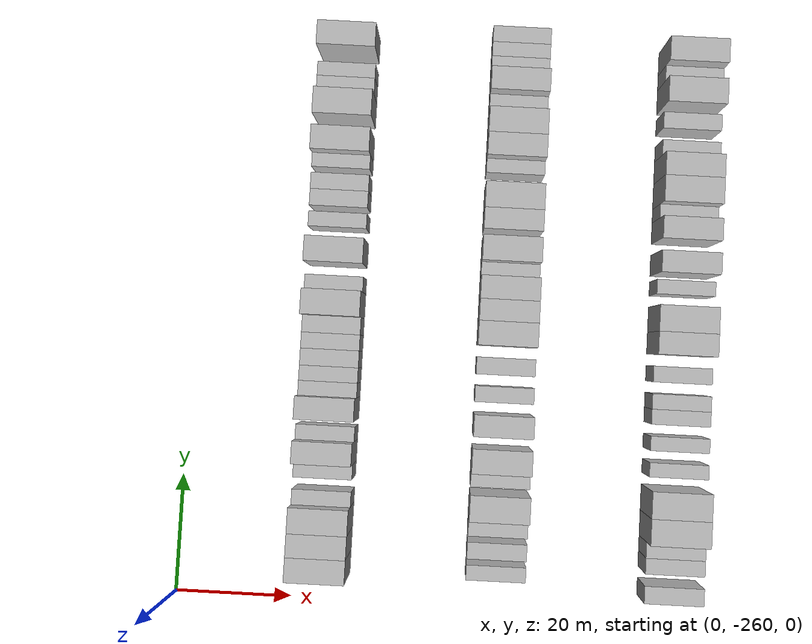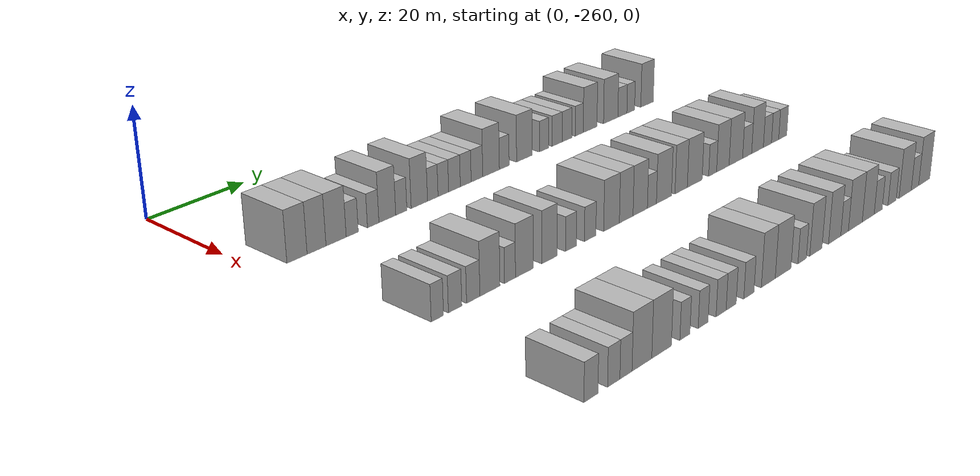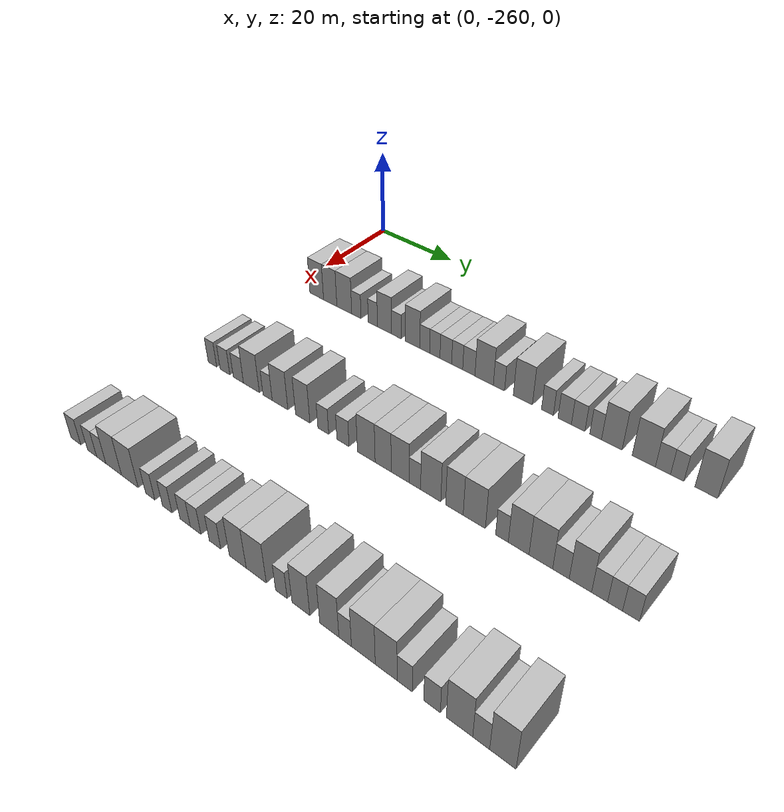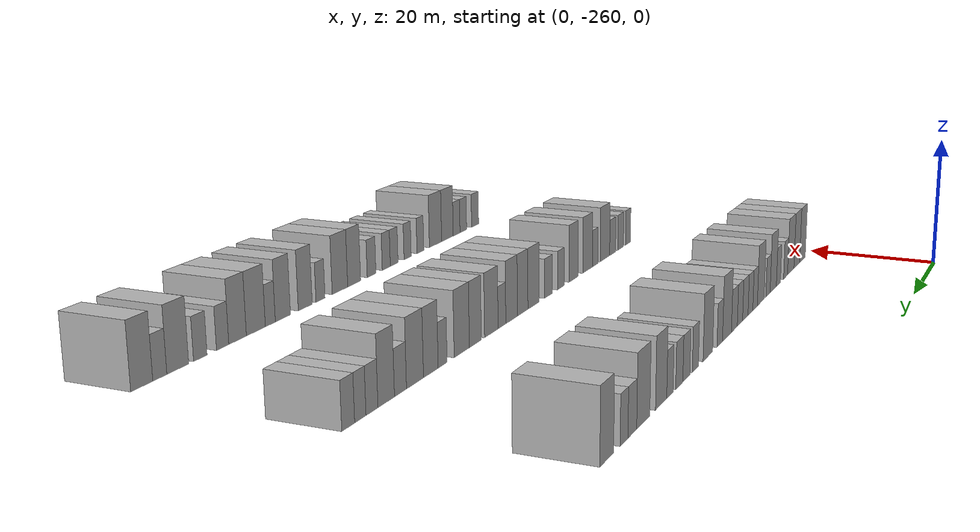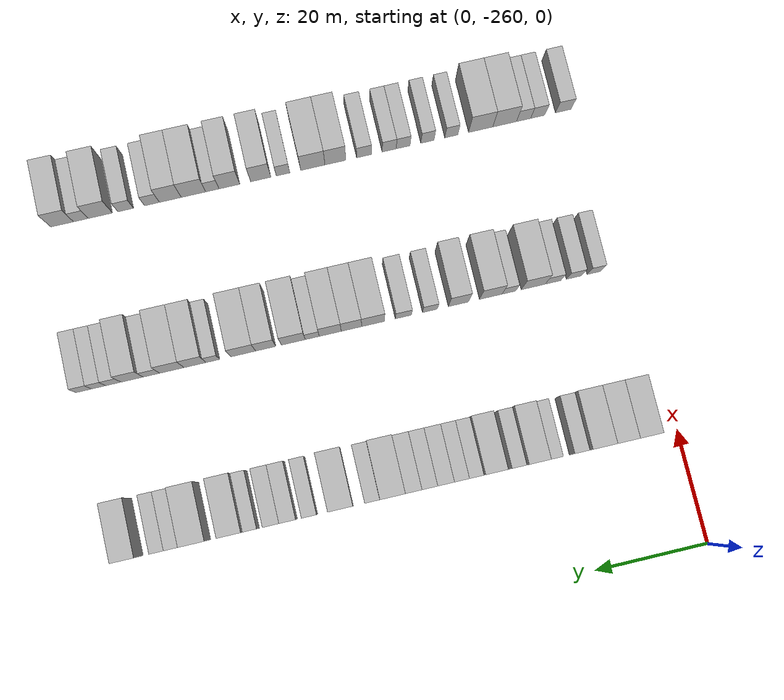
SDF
<sdf version="1.6">
 <world name="default">
  <model name="building_47">
   <static>1</static>
   <pose>25.0000 -253.4504 0 0.000000 0.000000 0.000000</pose>
   <link name="link">
    <pose>0 0 4.50 0 0 0</pose>
    <collision name="collision"><geometry><box><size>10.0000 4.0582 9.0000</size></box></geometry></collision>
    <visual name="visual">
     <cast_shadows>0</cast_shadows>
     <geometry><box><size>10.0000 4.0582 9.0000</size></box></geometry>
     <material>
      <script>
       <uri>model://HANNAS_wall/materials/scripts</uri>
       <uri>model://HANNAS_wall/materials/textures</uri>
       <name>vrc/HANNAS_wall</name>
      </script>
     </material>
    </visual>
   </link>
  </model>
  <model name="building_48">
   <static>1</static>
   <pose>25.0000 -249.4751 0 0.000000 0.000000 0.000000</pose>
   <link name="link">
    <pose>0 0 4.50 0 0 0</pose>
    <collision name="collision"><geometry><box><size>10.0000 3.8924 9.0000</size></box></geometry></collision>
    <visual name="visual">
     <cast_shadows>0</cast_shadows>
     <geometry><box><size>10.0000 3.8924 9.0000</size></box></geometry>
     <material>
      <script>
       <uri>model://HANNAS_wall/materials/scripts</uri>
       <uri>model://HANNAS_wall/materials/textures</uri>
       <name>vrc/HANNAS_wall</name>
      </script>
     </material>
    </visual>
   </link>
  </model>
  <model name="building_49">
   <static>1</static>
   <pose>25.0000 -245.3990 0 0.000000 0.000000 0.000000</pose>
   <link name="link">
    <pose>0 0 4.50 0 0 0</pose>
    <collision name="collision"><geometry><box><size>10.0000 4.2597 9.0000</size></box></geometry></collision>
    <visual name="visual">
     <cast_shadows>0</cast_shadows>
     <geometry><box><size>10.0000 4.2597 9.0000</size></box></geometry>
     <material>
      <script>
       <uri>model://HANNAS_wall/materials/scripts</uri>
       <uri>model://HANNAS_wall/materials/textures</uri>
       <name>vrc/HANNAS_wall</name>
      </script>
     </material>
    </visual>
   </link>
  </model>
  <model name="building_50">
   <static>1</static>
   <pose>25.0000 -241.9662 0 0.000000 0.000000 0.000000</pose>
   <link name="link">
    <pose>0 0 3.00 0 0 0</pose>
    <collision name="collision"><geometry><box><size>10.0000 2.6059 6.0000</size></box></geometry></collision>
    <visual name="visual">
     <cast_shadows>0</cast_shadows>
     <geometry><box><size>10.0000 2.6059 6.0000</size></box></geometry>
     <material>
      <script>
       <uri>model://HANNAS_wall/materials/scripts</uri>
       <uri>model://HANNAS_wall/materials/textures</uri>
       <name>vrc/HANNAS_wall</name>
      </script>
     </material>
    </visual>
   </link>
  </model>
  <model name="building_51">
   <static>1</static>
   <pose>25.0000 -237.3961 0 0.000000 0.000000 0.000000</pose>
   <link name="link">
    <pose>0 0 3.00 0 0 0</pose>
    <collision name="collision"><geometry><box><size>10.0000 2.5343 6.0000</size></box></geometry></collision>
    <visual name="visual">
     <cast_shadows>0</cast_shadows>
     <geometry><box><size>10.0000 2.5343 6.0000</size></box></geometry>
     <material>
      <script>
       <uri>model://HANNAS_wall/materials/scripts</uri>
       <uri>model://HANNAS_wall/materials/textures</uri>
       <name>vrc/HANNAS_wall</name>
      </script>
     </material>
    </visual>
   </link>
  </model>
  <model name="building_52">
   <static>1</static>
   <pose>25.0000 -234.2292 0 0.000000 0.000000 0.000000</pose>
   <link name="link">
    <pose>0 0 4.50 0 0 0</pose>
    <collision name="collision"><geometry><box><size>10.0000 3.7994 9.0000</size></box></geometry></collision>
    <visual name="visual">
     <cast_shadows>0</cast_shadows>
     <geometry><box><size>10.0000 3.7994 9.0000</size></box></geometry>
     <material>
      <script>
       <uri>model://HANNAS_wall/materials/scripts</uri>
       <uri>model://HANNAS_wall/materials/textures</uri>
       <name>vrc/HANNAS_wall</name>
      </script>
     </material>
    </visual>
   </link>
  </model>
  <model name="building_53">
   <static>1</static>
   <pose>25.0000 -231.0481 0 0.000000 0.000000 0.000000</pose>
   <link name="link">
    <pose>0 0 3.00 0 0 0</pose>
    <collision name="collision"><geometry><box><size>10.0000 2.5628 6.0000</size></box></geometry></collision>
    <visual name="visual">
     <cast_shadows>0</cast_shadows>
     <geometry><box><size>10.0000 2.5628 6.0000</size></box></geometry>
     <material>
      <script>
       <uri>model://HANNAS_wall/materials/scripts</uri>
       <uri>model://HANNAS_wall/materials/textures</uri>
       <name>vrc/HANNAS_wall</name>
      </script>
     </material>
    </visual>
   </link>
  </model>
  <model name="building_54">
   <static>1</static>
   <pose>25.0000 -226.8409 0 0.000000 0.000000 0.000000</pose>
   <link name="link">
    <pose>0 0 4.50 0 0 0</pose>
    <collision name="collision"><geometry><box><size>10.0000 3.8517 9.0000</size></box></geometry></collision>
    <visual name="visual">
     <cast_shadows>0</cast_shadows>
     <geometry><box><size>10.0000 3.8517 9.0000</size></box></geometry>
     <material>
      <script>
       <uri>model://HANNAS_wall/materials/scripts</uri>
       <uri>model://HANNAS_wall/materials/textures</uri>
       <name>vrc/HANNAS_wall</name>
      </script>
     </material>
    </visual>
   </link>
  </model>
  <model name="building_55">
   <static>1</static>
   <pose>25.0000 -223.6550 0 0.000000 0.000000 0.000000</pose>
   <link name="link">
    <pose>0 0 3.00 0 0 0</pose>
    <collision name="collision"><geometry><box><size>10.0000 2.5200 6.0000</size></box></geometry></collision>
    <visual name="visual">
     <cast_shadows>0</cast_shadows>
     <geometry><box><size>10.0000 2.5200 6.0000</size></box></geometry>
     <material>
      <script>
       <uri>model://HANNAS_wall/materials/scripts</uri>
       <uri>model://HANNAS_wall/materials/textures</uri>
       <name>vrc/HANNAS_wall</name>
      </script>
     </material>
    </visual>
   </link>
  </model>
  <model name="building_56">
   <static>1</static>
   <pose>25.0000 -221.1009 0 0.000000 0.000000 0.000000</pose>
   <link name="link">
    <pose>0 0 3.00 0 0 0</pose>
    <collision name="collision"><geometry><box><size>10.0000 2.5884 6.0000</size></box></geometry></collision>
    <visual name="visual">
     <cast_shadows>0</cast_shadows>
     <geometry><box><size>10.0000 2.5884 6.0000</size></box></geometry>
     <material>
      <script>
       <uri>model://HANNAS_wall/materials/scripts</uri>
       <uri>model://HANNAS_wall/materials/textures</uri>
       <name>vrc/HANNAS_wall</name>
      </script>
     </material>
    </visual>
   </link>
  </model>
  <model name="building_57">
   <static>1</static>
   <pose>25.0000 -218.3629 0 0.000000 0.000000 0.000000</pose>
   <link name="link">
    <pose>0 0 3.00 0 0 0</pose>
    <collision name="collision"><geometry><box><size>10.0000 2.8876 6.0000</size></box></geometry></collision>
    <visual name="visual">
     <cast_shadows>0</cast_shadows>
     <geometry><box><size>10.0000 2.8876 6.0000</size></box></geometry>
     <material>
      <script>
       <uri>model://HANNAS_wall/materials/scripts</uri>
       <uri>model://HANNAS_wall/materials/textures</uri>
       <name>vrc/HANNAS_wall</name>
      </script>
     </material>
    </visual>
   </link>
  </model>
  <model name="building_58">
   <static>1</static>
   <pose>25.0000 -215.5598 0 0.000000 0.000000 0.000000</pose>
   <link name="link">
    <pose>0 0 3.00 0 0 0</pose>
    <collision name="collision"><geometry><box><size>10.0000 2.7184 6.0000</size></box></geometry></collision>
    <visual name="visual">
     <cast_shadows>0</cast_shadows>
     <geometry><box><size>10.0000 2.7184 6.0000</size></box></geometry>
     <material>
      <script>
       <uri>model://HANNAS_wall/materials/scripts</uri>
       <uri>model://HANNAS_wall/materials/textures</uri>
       <name>vrc/HANNAS_wall</name>
      </script>
     </material>
    </visual>
   </link>
  </model>
  <model name="building_59">
   <static>1</static>
   <pose>25.0000 -212.7239 0 0.000000 0.000000 0.000000</pose>
   <link name="link">
    <pose>0 0 3.00 0 0 0</pose>
    <collision name="collision"><geometry><box><size>10.0000 2.9536 6.0000</size></box></geometry></collision>
    <visual name="visual">
     <cast_shadows>0</cast_shadows>
     <geometry><box><size>10.0000 2.9536 6.0000</size></box></geometry>
     <material>
      <script>
       <uri>model://HANNAS_wall/materials/scripts</uri>
       <uri>model://HANNAS_wall/materials/textures</uri>
       <name>vrc/HANNAS_wall</name>
      </script>
     </material>
    </visual>
   </link>
  </model>
  <model name="building_60">
   <static>1</static>
   <pose>25.0000 -209.0791 0 0.000000 0.000000 0.000000</pose>
   <link name="link">
    <pose>0 0 4.50 0 0 0</pose>
    <collision name="collision"><geometry><box><size>10.0000 4.3360 9.0000</size></box></geometry></collision>
    <visual name="visual">
     <cast_shadows>0</cast_shadows>
     <geometry><box><size>10.0000 4.3360 9.0000</size></box></geometry>
     <material>
      <script>
       <uri>model://HANNAS_wall/materials/scripts</uri>
       <uri>model://HANNAS_wall/materials/textures</uri>
       <name>vrc/HANNAS_wall</name>
      </script>
     </material>
    </visual>
   </link>
  </model>
  <model name="building_61">
   <static>1</static>
   <pose>25.0000 -205.6177 0 0.000000 0.000000 0.000000</pose>
   <link name="link">
    <pose>0 0 3.00 0 0 0</pose>
    <collision name="collision"><geometry><box><size>10.0000 2.5867 6.0000</size></box></geometry></collision>
    <visual name="visual">
     <cast_shadows>0</cast_shadows>
     <geometry><box><size>10.0000 2.5867 6.0000</size></box></geometry>
     <material>
      <script>
       <uri>model://HANNAS_wall/materials/scripts</uri>
       <uri>model://HANNAS_wall/materials/textures</uri>
       <name>vrc/HANNAS_wall</name>
      </script>
     </material>
    </visual>
   </link>
  </model>
  <model name="building_62">
   <static>1</static>
   <pose>25.0000 -200.1846 0 0.000000 0.000000 0.000000</pose>
   <link name="link">
    <pose>0 0 4.50 0 0 0</pose>
    <collision name="collision"><geometry><box><size>10.0000 4.2795 9.0000</size></box></geometry></collision>
    <visual name="visual">
     <cast_shadows>0</cast_shadows>
     <geometry><box><size>10.0000 4.2795 9.0000</size></box></geometry>
     <material>
      <script>
       <uri>model://HANNAS_wall/materials/scripts</uri>
       <uri>model://HANNAS_wall/materials/textures</uri>
       <name>vrc/HANNAS_wall</name>
      </script>
     </material>
    </visual>
   </link>
  </model>
  <model name="building_63">
   <static>1</static>
   <pose>25.0000 -194.7577 0 0.000000 0.000000 0.000000</pose>
   <link name="link">
    <pose>0 0 3.00 0 0 0</pose>
    <collision name="collision"><geometry><box><size>10.0000 2.5743 6.0000</size></box></geometry></collision>
    <visual name="visual">
     <cast_shadows>0</cast_shadows>
     <geometry><box><size>10.0000 2.5743 6.0000</size></box></geometry>
     <material>
      <script>
       <uri>model://HANNAS_wall/materials/scripts</uri>
       <uri>model://HANNAS_wall/materials/textures</uri>
       <name>vrc/HANNAS_wall</name>
      </script>
     </material>
    </visual>
   </link>
  </model>
  <model name="building_64">
   <static>1</static>
   <pose>25.0000 -191.0416 0 0.000000 0.000000 0.000000</pose>
   <link name="link">
    <pose>0 0 3.00 0 0 0</pose>
    <collision name="collision"><geometry><box><size>10.0000 2.8578 6.0000</size></box></geometry></collision>
    <visual name="visual">
     <cast_shadows>0</cast_shadows>
     <geometry><box><size>10.0000 2.8578 6.0000</size></box></geometry>
     <material>
      <script>
       <uri>model://HANNAS_wall/materials/scripts</uri>
       <uri>model://HANNAS_wall/materials/textures</uri>
       <name>vrc/HANNAS_wall</name>
      </script>
     </material>
    </visual>
   </link>
  </model>
  <model name="building_65">
   <static>1</static>
   <pose>25.0000 -188.2023 0 0.000000 0.000000 0.000000</pose>
   <link name="link">
    <pose>0 0 3.00 0 0 0</pose>
    <collision name="collision"><geometry><box><size>10.0000 2.8209 6.0000</size></box></geometry></collision>
    <visual name="visual">
     <cast_shadows>0</cast_shadows>
     <geometry><box><size>10.0000 2.8209 6.0000</size></box></geometry>
     <material>
      <script>
       <uri>model://HANNAS_wall/materials/scripts</uri>
       <uri>model://HANNAS_wall/materials/textures</uri>
       <name>vrc/HANNAS_wall</name>
      </script>
     </material>
    </visual>
   </link>
  </model>
  <model name="building_66">
   <static>1</static>
   <pose>25.0000 -184.5885 0 0.000000 0.000000 0.000000</pose>
   <link name="link">
    <pose>0 0 3.00 0 0 0</pose>
    <collision name="collision"><geometry><box><size>10.0000 2.4066 6.0000</size></box></geometry></collision>
    <visual name="visual">
     <cast_shadows>0</cast_shadows>
     <geometry><box><size>10.0000 2.4066 6.0000</size></box></geometry>
     <material>
      <script>
       <uri>model://HANNAS_wall/materials/scripts</uri>
       <uri>model://HANNAS_wall/materials/textures</uri>
       <name>vrc/HANNAS_wall</name>
      </script>
     </material>
    </visual>
   </link>
  </model>
  <model name="building_67">
   <static>1</static>
   <pose>25.0000 -181.3224 0 0.000000 0.000000 0.000000</pose>
   <link name="link">
    <pose>0 0 4.50 0 0 0</pose>
    <collision name="collision"><geometry><box><size>10.0000 4.1255 9.0000</size></box></geometry></collision>
    <visual name="visual">
     <cast_shadows>0</cast_shadows>
     <geometry><box><size>10.0000 4.1255 9.0000</size></box></geometry>
     <material>
      <script>
       <uri>model://HANNAS_wall/materials/scripts</uri>
       <uri>model://HANNAS_wall/materials/textures</uri>
       <name>vrc/HANNAS_wall</name>
      </script>
     </material>
    </visual>
   </link>
  </model>
  <model name="building_68">
   <static>1</static>
   <pose>25.0000 -175.0251 0 0.000000 0.000000 0.000000</pose>
   <link name="link">
    <pose>0 0 4.50 0 0 0</pose>
    <collision name="collision"><geometry><box><size>10.0000 4.4691 9.0000</size></box></geometry></collision>
    <visual name="visual">
     <cast_shadows>0</cast_shadows>
     <geometry><box><size>10.0000 4.4691 9.0000</size></box></geometry>
     <material>
      <script>
       <uri>model://HANNAS_wall/materials/scripts</uri>
       <uri>model://HANNAS_wall/materials/textures</uri>
       <name>vrc/HANNAS_wall</name>
      </script>
     </material>
    </visual>
   </link>
  </model>
  <model name="building_69">
   <static>1</static>
   <pose>25.0000 -171.3629 0 0.000000 0.000000 0.000000</pose>
   <link name="link">
    <pose>0 0 3.00 0 0 0</pose>
    <collision name="collision"><geometry><box><size>10.0000 2.8554 6.0000</size></box></geometry></collision>
    <visual name="visual">
     <cast_shadows>0</cast_shadows>
     <geometry><box><size>10.0000 2.8554 6.0000</size></box></geometry>
     <material>
      <script>
       <uri>model://HANNAS_wall/materials/scripts</uri>
       <uri>model://HANNAS_wall/materials/textures</uri>
       <name>vrc/HANNAS_wall</name>
      </script>
     </material>
    </visual>
   </link>
  </model>
  <model name="building_70">
   <static>1</static>
   <pose>25.0000 -168.6951 0 0.000000 0.000000 0.000000</pose>
   <link name="link">
    <pose>0 0 3.00 0 0 0</pose>
    <collision name="collision"><geometry><box><size>10.0000 2.4801 6.0000</size></box></geometry></collision>
    <visual name="visual">
     <cast_shadows>0</cast_shadows>
     <geometry><box><size>10.0000 2.4801 6.0000</size></box></geometry>
     <material>
      <script>
       <uri>model://HANNAS_wall/materials/scripts</uri>
       <uri>model://HANNAS_wall/materials/textures</uri>
       <name>vrc/HANNAS_wall</name>
      </script>
     </material>
    </visual>
   </link>
  </model>
  <model name="building_71">
   <static>1</static>
   <pose>25.0000 -163.4009 0 0.000000 0.000000 0.000000</pose>
   <link name="link">
    <pose>0 0 4.50 0 0 0</pose>
    <collision name="collision"><geometry><box><size>10.0000 4.1083 9.0000</size></box></geometry></collision>
    <visual name="visual">
     <cast_shadows>0</cast_shadows>
     <geometry><box><size>10.0000 4.1083 9.0000</size></box></geometry>
     <material>
      <script>
       <uri>model://HANNAS_wall/materials/scripts</uri>
       <uri>model://HANNAS_wall/materials/textures</uri>
       <name>vrc/HANNAS_wall</name>
      </script>
     </material>
    </visual>
   </link>
  </model>
  <model name="building_277">
   <static>1</static>
   <pose>55.0000 -252.9484 0 0.000000 0.000000 0.000000</pose>
   <link name="link">
    <pose>0 0 3.00 0 0 0</pose>
    <collision name="collision"><geometry><box><size>10.0000 2.4978 6.0000</size></box></geometry></collision>
    <visual name="visual">
     <cast_shadows>0</cast_shadows>
     <geometry><box><size>10.0000 2.4978 6.0000</size></box></geometry>
     <material>
      <script>
       <uri>model://HANNAS_wall/materials/scripts</uri>
       <uri>model://HANNAS_wall/materials/textures</uri>
       <name>vrc/HANNAS_wall</name>
      </script>
     </material>
    </visual>
   </link>
  </model>
  <model name="building_278">
   <static>1</static>
   <pose>55.0000 -249.3042 0 0.000000 0.000000 0.000000</pose>
   <link name="link">
    <pose>0 0 3.00 0 0 0</pose>
    <collision name="collision"><geometry><box><size>10.0000 2.7906 6.0000</size></box></geometry></collision>
    <visual name="visual">
     <cast_shadows>0</cast_shadows>
     <geometry><box><size>10.0000 2.7906 6.0000</size></box></geometry>
     <material>
      <script>
       <uri>model://HANNAS_wall/materials/scripts</uri>
       <uri>model://HANNAS_wall/materials/textures</uri>
       <name>vrc/HANNAS_wall</name>
      </script>
     </material>
    </visual>
   </link>
  </model>
  <model name="building_279">
   <static>1</static>
   <pose>55.0000 -245.4850 0 0.000000 0.000000 0.000000</pose>
   <link name="link">
    <pose>0 0 3.00 0 0 0</pose>
    <collision name="collision"><geometry><box><size>10.0000 2.8479 6.0000</size></box></geometry></collision>
    <visual name="visual">
     <cast_shadows>0</cast_shadows>
     <geometry><box><size>10.0000 2.8479 6.0000</size></box></geometry>
     <material>
      <script>
       <uri>model://HANNAS_wall/materials/scripts</uri>
       <uri>model://HANNAS_wall/materials/textures</uri>
       <name>vrc/HANNAS_wall</name>
      </script>
     </material>
    </visual>
   </link>
  </model>
  <model name="building_280">
   <static>1</static>
   <pose>55.0000 -241.8711 0 0.000000 0.000000 0.000000</pose>
   <link name="link">
    <pose>0 0 4.50 0 0 0</pose>
    <collision name="collision"><geometry><box><size>10.0000 4.3798 9.0000</size></box></geometry></collision>
    <visual name="visual">
     <cast_shadows>0</cast_shadows>
     <geometry><box><size>10.0000 4.3798 9.0000</size></box></geometry>
     <material>
      <script>
       <uri>model://HANNAS_wall/materials/scripts</uri>
       <uri>model://HANNAS_wall/materials/textures</uri>
       <name>vrc/HANNAS_wall</name>
      </script>
     </material>
    </visual>
   </link>
  </model>
  <model name="building_281">
   <static>1</static>
   <pose>55.0000 -237.4410 0 0.000000 0.000000 0.000000</pose>
   <link name="link">
    <pose>0 0 3.00 0 0 0</pose>
    <collision name="collision"><geometry><box><size>10.0000 2.4805 6.0000</size></box></geometry></collision>
    <visual name="visual">
     <cast_shadows>0</cast_shadows>
     <geometry><box><size>10.0000 2.4805 6.0000</size></box></geometry>
     <material>
      <script>
       <uri>model://HANNAS_wall/materials/scripts</uri>
       <uri>model://HANNAS_wall/materials/textures</uri>
       <name>vrc/HANNAS_wall</name>
      </script>
     </material>
    </visual>
   </link>
  </model>
  <model name="building_282">
   <static>1</static>
   <pose>55.0000 -234.1389 0 0.000000 0.000000 0.000000</pose>
   <link name="link">
    <pose>0 0 4.50 0 0 0</pose>
    <collision name="collision"><geometry><box><size>10.0000 4.1237 9.0000</size></box></geometry></collision>
    <visual name="visual">
     <cast_shadows>0</cast_shadows>
     <geometry><box><size>10.0000 4.1237 9.0000</size></box></geometry>
     <material>
      <script>
       <uri>model://HANNAS_wall/materials/scripts</uri>
       <uri>model://HANNAS_wall/materials/textures</uri>
       <name>vrc/HANNAS_wall</name>
      </script>
     </material>
    </visual>
   </link>
  </model>
  <model name="building_283">
   <static>1</static>
   <pose>55.0000 -228.2493 0 0.000000 0.000000 0.000000</pose>
   <link name="link">
    <pose>0 0 4.50 0 0 0</pose>
    <collision name="collision"><geometry><box><size>10.0000 3.6554 9.0000</size></box></geometry></collision>
    <visual name="visual">
     <cast_shadows>0</cast_shadows>
     <geometry><box><size>10.0000 3.6554 9.0000</size></box></geometry>
     <material>
      <script>
       <uri>model://HANNAS_wall/materials/scripts</uri>
       <uri>model://HANNAS_wall/materials/textures</uri>
       <name>vrc/HANNAS_wall</name>
      </script>
     </material>
    </visual>
   </link>
  </model>
  <model name="building_284">
   <static>1</static>
   <pose>55.0000 -223.0812 0 0.000000 0.000000 0.000000</pose>
   <link name="link">
    <pose>0 0 3.00 0 0 0</pose>
    <collision name="collision"><geometry><box><size>10.0000 2.6809 6.0000</size></box></geometry></collision>
    <visual name="visual">
     <cast_shadows>0</cast_shadows>
     <geometry><box><size>10.0000 2.6809 6.0000</size></box></geometry>
     <material>
      <script>
       <uri>model://HANNAS_wall/materials/scripts</uri>
       <uri>model://HANNAS_wall/materials/textures</uri>
       <name>vrc/HANNAS_wall</name>
      </script>
     </material>
    </visual>
   </link>
  </model>
  <model name="building_285">
   <static>1</static>
   <pose>55.0000 -218.2905 0 0.000000 0.000000 0.000000</pose>
   <link name="link">
    <pose>0 0 3.00 0 0 0</pose>
    <collision name="collision"><geometry><box><size>10.0000 2.9004 6.0000</size></box></geometry></collision>
    <visual name="visual">
     <cast_shadows>0</cast_shadows>
     <geometry><box><size>10.0000 2.9004 6.0000</size></box></geometry>
     <material>
      <script>
       <uri>model://HANNAS_wall/materials/scripts</uri>
       <uri>model://HANNAS_wall/materials/textures</uri>
       <name>vrc/HANNAS_wall</name>
      </script>
     </material>
    </visual>
   </link>
  </model>
  <model name="building_286">
   <static>1</static>
   <pose>55.0000 -212.7869 0 0.000000 0.000000 0.000000</pose>
   <link name="link">
    <pose>0 0 4.50 0 0 0</pose>
    <collision name="collision"><geometry><box><size>10.0000 4.1067 9.0000</size></box></geometry></collision>
    <visual name="visual">
     <cast_shadows>0</cast_shadows>
     <geometry><box><size>10.0000 4.1067 9.0000</size></box></geometry>
     <material>
      <script>
       <uri>model://HANNAS_wall/materials/scripts</uri>
       <uri>model://HANNAS_wall/materials/textures</uri>
       <name>vrc/HANNAS_wall</name>
      </script>
     </material>
    </visual>
   </link>
  </model>
  <model name="building_287">
   <static>1</static>
   <pose>55.0000 -208.9037 0 0.000000 0.000000 0.000000</pose>
   <link name="link">
    <pose>0 0 4.50 0 0 0</pose>
    <collision name="collision"><geometry><box><size>10.0000 3.6597 9.0000</size></box></geometry></collision>
    <visual name="visual">
     <cast_shadows>0</cast_shadows>
     <geometry><box><size>10.0000 3.6597 9.0000</size></box></geometry>
     <material>
      <script>
       <uri>model://HANNAS_wall/materials/scripts</uri>
       <uri>model://HANNAS_wall/materials/textures</uri>
       <name>vrc/HANNAS_wall</name>
      </script>
     </material>
    </visual>
   </link>
  </model>
  <model name="building_288">
   <static>1</static>
   <pose>55.0000 -205.1059 0 0.000000 0.000000 0.000000</pose>
   <link name="link">
    <pose>0 0 4.50 0 0 0</pose>
    <collision name="collision"><geometry><box><size>10.0000 3.9360 9.0000</size></box></geometry></collision>
    <visual name="visual">
     <cast_shadows>0</cast_shadows>
     <geometry><box><size>10.0000 3.9360 9.0000</size></box></geometry>
     <material>
      <script>
       <uri>model://HANNAS_wall/materials/scripts</uri>
       <uri>model://HANNAS_wall/materials/textures</uri>
       <name>vrc/HANNAS_wall</name>
      </script>
     </material>
    </visual>
   </link>
  </model>
  <model name="building_289">
   <static>1</static>
   <pose>55.0000 -201.8782 0 0.000000 0.000000 0.000000</pose>
   <link name="link">
    <pose>0 0 3.00 0 0 0</pose>
    <collision name="collision"><geometry><box><size>10.0000 2.5194 6.0000</size></box></geometry></collision>
    <visual name="visual">
     <cast_shadows>0</cast_shadows>
     <geometry><box><size>10.0000 2.5194 6.0000</size></box></geometry>
     <material>
      <script>
       <uri>model://HANNAS_wall/materials/scripts</uri>
       <uri>model://HANNAS_wall/materials/textures</uri>
       <name>vrc/HANNAS_wall</name>
      </script>
     </material>
    </visual>
   </link>
  </model>
  <model name="building_290">
   <static>1</static>
   <pose>55.0000 -198.4731 0 0.000000 0.000000 0.000000</pose>
   <link name="link">
    <pose>0 0 4.50 0 0 0</pose>
    <collision name="collision"><geometry><box><size>10.0000 4.2907 9.0000</size></box></geometry></collision>
    <visual name="visual">
     <cast_shadows>0</cast_shadows>
     <geometry><box><size>10.0000 4.2907 9.0000</size></box></geometry>
     <material>
      <script>
       <uri>model://HANNAS_wall/materials/scripts</uri>
       <uri>model://HANNAS_wall/materials/textures</uri>
       <name>vrc/HANNAS_wall</name>
      </script>
     </material>
    </visual>
   </link>
  </model>
  <model name="building_291">
   <static>1</static>
   <pose>55.0000 -193.5205 0 0.000000 0.000000 0.000000</pose>
   <link name="link">
    <pose>0 0 4.50 0 0 0</pose>
    <collision name="collision"><geometry><box><size>10.0000 3.6147 9.0000</size></box></geometry></collision>
    <visual name="visual">
     <cast_shadows>0</cast_shadows>
     <geometry><box><size>10.0000 3.6147 9.0000</size></box></geometry>
     <material>
      <script>
       <uri>model://HANNAS_wall/materials/scripts</uri>
       <uri>model://HANNAS_wall/materials/textures</uri>
       <name>vrc/HANNAS_wall</name>
      </script>
     </material>
    </visual>
   </link>
  </model>
  <model name="building_292">
   <static>1</static>
   <pose>55.0000 -189.4928 0 0.000000 0.000000 0.000000</pose>
   <link name="link">
    <pose>0 0 4.50 0 0 0</pose>
    <collision name="collision"><geometry><box><size>10.0000 4.4408 9.0000</size></box></geometry></collision>
    <visual name="visual">
     <cast_shadows>0</cast_shadows>
     <geometry><box><size>10.0000 4.4408 9.0000</size></box></geometry>
     <material>
      <script>
       <uri>model://HANNAS_wall/materials/scripts</uri>
       <uri>model://HANNAS_wall/materials/textures</uri>
       <name>vrc/HANNAS_wall</name>
      </script>
     </material>
    </visual>
   </link>
  </model>
  <model name="building_293">
   <static>1</static>
   <pose>55.0000 -184.0486 0 0.000000 0.000000 0.000000</pose>
   <link name="link">
    <pose>0 0 3.00 0 0 0</pose>
    <collision name="collision"><geometry><box><size>10.0000 2.4476 6.0000</size></box></geometry></collision>
    <visual name="visual">
     <cast_shadows>0</cast_shadows>
     <geometry><box><size>10.0000 2.4476 6.0000</size></box></geometry>
     <material>
      <script>
       <uri>model://HANNAS_wall/materials/scripts</uri>
       <uri>model://HANNAS_wall/materials/textures</uri>
       <name>vrc/HANNAS_wall</name>
      </script>
     </material>
    </visual>
   </link>
  </model>
  <model name="building_294">
   <static>1</static>
   <pose>55.0000 -180.8645 0 0.000000 0.000000 0.000000</pose>
   <link name="link">
    <pose>0 0 4.50 0 0 0</pose>
    <collision name="collision"><geometry><box><size>10.0000 3.9205 9.0000</size></box></geometry></collision>
    <visual name="visual">
     <cast_shadows>0</cast_shadows>
     <geometry><box><size>10.0000 3.9205 9.0000</size></box></geometry>
     <material>
      <script>
       <uri>model://HANNAS_wall/materials/scripts</uri>
       <uri>model://HANNAS_wall/materials/textures</uri>
       <name>vrc/HANNAS_wall</name>
      </script>
     </material>
    </visual>
   </link>
  </model>
  <model name="building_295">
   <static>1</static>
   <pose>55.0000 -176.7304 0 0.000000 0.000000 0.000000</pose>
   <link name="link">
    <pose>0 0 4.50 0 0 0</pose>
    <collision name="collision"><geometry><box><size>10.0000 4.3477 9.0000</size></box></geometry></collision>
    <visual name="visual">
     <cast_shadows>0</cast_shadows>
     <geometry><box><size>10.0000 4.3477 9.0000</size></box></geometry>
     <material>
      <script>
       <uri>model://HANNAS_wall/materials/scripts</uri>
       <uri>model://HANNAS_wall/materials/textures</uri>
       <name>vrc/HANNAS_wall</name>
      </script>
     </material>
    </visual>
   </link>
  </model>
  <model name="building_296">
   <static>1</static>
   <pose>55.0000 -173.0792 0 0.000000 0.000000 0.000000</pose>
   <link name="link">
    <pose>0 0 3.00 0 0 0</pose>
    <collision name="collision"><geometry><box><size>10.0000 2.9547 6.0000</size></box></geometry></collision>
    <visual name="visual">
     <cast_shadows>0</cast_shadows>
     <geometry><box><size>10.0000 2.9547 6.0000</size></box></geometry>
     <material>
      <script>
       <uri>model://HANNAS_wall/materials/scripts</uri>
       <uri>model://HANNAS_wall/materials/textures</uri>
       <name>vrc/HANNAS_wall</name>
      </script>
     </material>
    </visual>
   </link>
  </model>
  <model name="building_297">
   <static>1</static>
   <pose>55.0000 -169.6453 0 0.000000 0.000000 0.000000</pose>
   <link name="link">
    <pose>0 0 4.50 0 0 0</pose>
    <collision name="collision"><geometry><box><size>10.0000 3.9131 9.0000</size></box></geometry></collision>
    <visual name="visual">
     <cast_shadows>0</cast_shadows>
     <geometry><box><size>10.0000 3.9131 9.0000</size></box></geometry>
     <material>
      <script>
       <uri>model://HANNAS_wall/materials/scripts</uri>
       <uri>model://HANNAS_wall/materials/textures</uri>
       <name>vrc/HANNAS_wall</name>
      </script>
     </material>
    </visual>
   </link>
  </model>
  <model name="building_298">
   <static>1</static>
   <pose>55.0000 -166.3215 0 0.000000 0.000000 0.000000</pose>
   <link name="link">
    <pose>0 0 3.00 0 0 0</pose>
    <collision name="collision"><geometry><box><size>10.0000 2.7344 6.0000</size></box></geometry></collision>
    <visual name="visual">
     <cast_shadows>0</cast_shadows>
     <geometry><box><size>10.0000 2.7344 6.0000</size></box></geometry>
     <material>
      <script>
       <uri>model://HANNAS_wall/materials/scripts</uri>
       <uri>model://HANNAS_wall/materials/textures</uri>
       <name>vrc/HANNAS_wall</name>
      </script>
     </material>
    </visual>
   </link>
  </model>
  <model name="building_299">
   <static>1</static>
   <pose>55.0000 -163.7003 0 0.000000 0.000000 0.000000</pose>
   <link name="link">
    <pose>0 0 3.00 0 0 0</pose>
    <collision name="collision"><geometry><box><size>10.0000 2.5079 6.0000</size></box></geometry></collision>
    <visual name="visual">
     <cast_shadows>0</cast_shadows>
     <geometry><box><size>10.0000 2.5079 6.0000</size></box></geometry>
     <material>
      <script>
       <uri>model://HANNAS_wall/materials/scripts</uri>
       <uri>model://HANNAS_wall/materials/textures</uri>
       <name>vrc/HANNAS_wall</name>
      </script>
     </material>
    </visual>
   </link>
  </model>
  <model name="building_300">
   <static>1</static>
   <pose>55.0000 -161.0512 0 0.000000 0.000000 0.000000</pose>
   <link name="link">
    <pose>0 0 3.00 0 0 0</pose>
    <collision name="collision"><geometry><box><size>10.0000 2.7903 6.0000</size></box></geometry></collision>
    <visual name="visual">
     <cast_shadows>0</cast_shadows>
     <geometry><box><size>10.0000 2.7903 6.0000</size></box></geometry>
     <material>
      <script>
       <uri>model://HANNAS_wall/materials/scripts</uri>
       <uri>model://HANNAS_wall/materials/textures</uri>
       <name>vrc/HANNAS_wall</name>
      </script>
     </material>
    </visual>
   </link>
  </model>
  <model name="building_501">
   <static>1</static>
   <pose>85.0000 -255.1011 0 0.000000 0.000000 0.000000</pose>
   <link name="link">
    <pose>0 0 3.00 0 0 0</pose>
    <collision name="collision"><geometry><box><size>10.0000 2.8955 6.0000</size></box></geometry></collision>
    <visual name="visual">
     <cast_shadows>0</cast_shadows>
     <geometry><box><size>10.0000 2.8955 6.0000</size></box></geometry>
     <material>
      <script>
       <uri>model://HANNAS_wall/materials/scripts</uri>
       <uri>model://HANNAS_wall/materials/textures</uri>
       <name>vrc/HANNAS_wall</name>
      </script>
     </material>
    </visual>
   </link>
  </model>
  <model name="building_502">
   <static>1</static>
   <pose>85.0000 -250.3404 0 0.000000 0.000000 0.000000</pose>
   <link name="link">
    <pose>0 0 3.00 0 0 0</pose>
    <collision name="collision"><geometry><box><size>10.0000 2.6259 6.0000</size></box></geometry></collision>
    <visual name="visual">
     <cast_shadows>0</cast_shadows>
     <geometry><box><size>10.0000 2.6259 6.0000</size></box></geometry>
     <material>
      <script>
       <uri>model://HANNAS_wall/materials/scripts</uri>
       <uri>model://HANNAS_wall/materials/textures</uri>
       <name>vrc/HANNAS_wall</name>
      </script>
     </material>
    </visual>
   </link>
  </model>
  <model name="building_503">
   <static>1</static>
   <pose>85.0000 -247.7118 0 0.000000 0.000000 0.000000</pose>
   <link name="link">
    <pose>0 0 3.00 0 0 0</pose>
    <collision name="collision"><geometry><box><size>10.0000 2.6314 6.0000</size></box></geometry></collision>
    <visual name="visual">
     <cast_shadows>0</cast_shadows>
     <geometry><box><size>10.0000 2.6314 6.0000</size></box></geometry>
     <material>
      <script>
       <uri>model://HANNAS_wall/materials/scripts</uri>
       <uri>model://HANNAS_wall/materials/textures</uri>
       <name>vrc/HANNAS_wall</name>
      </script>
     </material>
    </visual>
   </link>
  </model>
  <model name="building_504">
   <static>1</static>
   <pose>85.0000 -244.1976 0 0.000000 0.000000 0.000000</pose>
   <link name="link">
    <pose>0 0 4.50 0 0 0</pose>
    <collision name="collision"><geometry><box><size>10.0000 4.3970 9.0000</size></box></geometry></collision>
    <visual name="visual">
     <cast_shadows>0</cast_shadows>
     <geometry><box><size>10.0000 4.3970 9.0000</size></box></geometry>
     <material>
      <script>
       <uri>model://HANNAS_wall/materials/scripts</uri>
       <uri>model://HANNAS_wall/materials/textures</uri>
       <name>vrc/HANNAS_wall</name>
      </script>
     </material>
    </visual>
   </link>
  </model>
  <model name="building_505">
   <static>1</static>
   <pose>85.0000 -239.7492 0 0.000000 0.000000 0.000000</pose>
   <link name="link">
    <pose>0 0 4.50 0 0 0</pose>
    <collision name="collision"><geometry><box><size>10.0000 4.4998 9.0000</size></box></geometry></collision>
    <visual name="visual">
     <cast_shadows>0</cast_shadows>
     <geometry><box><size>10.0000 4.4998 9.0000</size></box></geometry>
     <material>
      <script>
       <uri>model://HANNAS_wall/materials/scripts</uri>
       <uri>model://HANNAS_wall/materials/textures</uri>
       <name>vrc/HANNAS_wall</name>
      </script>
     </material>
    </visual>
   </link>
  </model>
  <model name="building_506">
   <static>1</static>
   <pose>85.0000 -234.2970 0 0.000000 0.000000 0.000000</pose>
   <link name="link">
    <pose>0 0 3.00 0 0 0</pose>
    <collision name="collision"><geometry><box><size>10.0000 2.4046 6.0000</size></box></geometry></collision>
    <visual name="visual">
     <cast_shadows>0</cast_shadows>
     <geometry><box><size>10.0000 2.4046 6.0000</size></box></geometry>
     <material>
      <script>
       <uri>model://HANNAS_wall/materials/scripts</uri>
       <uri>model://HANNAS_wall/materials/textures</uri>
       <name>vrc/HANNAS_wall</name>
      </script>
     </material>
    </visual>
   </link>
  </model>
  <model name="building_507">
   <static>1</static>
   <pose>85.0000 -229.8776 0 0.000000 0.000000 0.000000</pose>
   <link name="link">
    <pose>0 0 3.00 0 0 0</pose>
    <collision name="collision"><geometry><box><size>10.0000 2.4343 6.0000</size></box></geometry></collision>
    <visual name="visual">
     <cast_shadows>0</cast_shadows>
     <geometry><box><size>10.0000 2.4343 6.0000</size></box></geometry>
     <material>
      <script>
       <uri>model://HANNAS_wall/materials/scripts</uri>
       <uri>model://HANNAS_wall/materials/textures</uri>
       <name>vrc/HANNAS_wall</name>
      </script>
     </material>
    </visual>
   </link>
  </model>
  <model name="building_508">
   <static>1</static>
   <pose>85.0000 -225.3862 0 0.000000 0.000000 0.000000</pose>
   <link name="link">
    <pose>0 0 3.00 0 0 0</pose>
    <collision name="collision"><geometry><box><size>10.0000 2.5484 6.0000</size></box></geometry></collision>
    <visual name="visual">
     <cast_shadows>0</cast_shadows>
     <geometry><box><size>10.0000 2.5484 6.0000</size></box></geometry>
     <material>
      <script>
       <uri>model://HANNAS_wall/materials/scripts</uri>
       <uri>model://HANNAS_wall/materials/textures</uri>
       <name>vrc/HANNAS_wall</name>
      </script>
     </material>
    </visual>
   </link>
  </model>
  <model name="building_509">
   <static>1</static>
   <pose>85.0000 -222.8151 0 0.000000 0.000000 0.000000</pose>
   <link name="link">
    <pose>0 0 3.00 0 0 0</pose>
    <collision name="collision"><geometry><box><size>10.0000 2.5939 6.0000</size></box></geometry></collision>
    <visual name="visual">
     <cast_shadows>0</cast_shadows>
     <geometry><box><size>10.0000 2.5939 6.0000</size></box></geometry>
     <material>
      <script>
       <uri>model://HANNAS_wall/materials/scripts</uri>
       <uri>model://HANNAS_wall/materials/textures</uri>
       <name>vrc/HANNAS_wall</name>
      </script>
     </material>
    </visual>
   </link>
  </model>
  <model name="building_510">
   <static>1</static>
   <pose>85.0000 -218.1658 0 0.000000 0.000000 0.000000</pose>
   <link name="link">
    <pose>0 0 3.00 0 0 0</pose>
    <collision name="collision"><geometry><box><size>10.0000 2.7046 6.0000</size></box></geometry></collision>
    <visual name="visual">
     <cast_shadows>0</cast_shadows>
     <geometry><box><size>10.0000 2.7046 6.0000</size></box></geometry>
     <material>
      <script>
       <uri>model://HANNAS_wall/materials/scripts</uri>
       <uri>model://HANNAS_wall/materials/textures</uri>
       <name>vrc/HANNAS_wall</name>
      </script>
     </material>
    </visual>
   </link>
  </model>
  <model name="building_511">
   <static>1</static>
   <pose>85.0000 -212.8990 0 0.000000 0.000000 0.000000</pose>
   <link name="link">
    <pose>0 0 4.50 0 0 0</pose>
    <collision name="collision"><geometry><box><size>10.0000 3.8290 9.0000</size></box></geometry></collision>
    <visual name="visual">
     <cast_shadows>0</cast_shadows>
     <geometry><box><size>10.0000 3.8290 9.0000</size></box></geometry>
     <material>
      <script>
       <uri>model://HANNAS_wall/materials/scripts</uri>
       <uri>model://HANNAS_wall/materials/textures</uri>
       <name>vrc/HANNAS_wall</name>
      </script>
     </material>
    </visual>
   </link>
  </model>
  <model name="building_512">
   <static>1</static>
   <pose>85.0000 -208.7616 0 0.000000 0.000000 0.000000</pose>
   <link name="link">
    <pose>0 0 4.50 0 0 0</pose>
    <collision name="collision"><geometry><box><size>10.0000 4.4459 9.0000</size></box></geometry></collision>
    <visual name="visual">
     <cast_shadows>0</cast_shadows>
     <geometry><box><size>10.0000 4.4459 9.0000</size></box></geometry>
     <material>
      <script>
       <uri>model://HANNAS_wall/materials/scripts</uri>
       <uri>model://HANNAS_wall/materials/textures</uri>
       <name>vrc/HANNAS_wall</name>
      </script>
     </material>
    </visual>
   </link>
  </model>
  <model name="building_513">
   <static>1</static>
   <pose>85.0000 -203.3002 0 0.000000 0.000000 0.000000</pose>
   <link name="link">
    <pose>0 0 3.00 0 0 0</pose>
    <collision name="collision"><geometry><box><size>10.0000 2.4768 6.0000</size></box></geometry></collision>
    <visual name="visual">
     <cast_shadows>0</cast_shadows>
     <geometry><box><size>10.0000 2.4768 6.0000</size></box></geometry>
     <material>
      <script>
       <uri>model://HANNAS_wall/materials/scripts</uri>
       <uri>model://HANNAS_wall/materials/textures</uri>
       <name>vrc/HANNAS_wall</name>
      </script>
     </material>
    </visual>
   </link>
  </model>
  <model name="building_514">
   <static>1</static>
   <pose>85.0000 -199.2175 0 0.000000 0.000000 0.000000</pose>
   <link name="link">
    <pose>0 0 4.50 0 0 0</pose>
    <collision name="collision"><geometry><box><size>10.0000 3.6886 9.0000</size></box></geometry></collision>
    <visual name="visual">
     <cast_shadows>0</cast_shadows>
     <geometry><box><size>10.0000 3.6886 9.0000</size></box></geometry>
     <material>
      <script>
       <uri>model://HANNAS_wall/materials/scripts</uri>
       <uri>model://HANNAS_wall/materials/textures</uri>
       <name>vrc/HANNAS_wall</name>
      </script>
     </material>
    </visual>
   </link>
  </model>
  <model name="building_515">
   <static>1</static>
   <pose>85.0000 -193.4759 0 0.000000 0.000000 0.000000</pose>
   <link name="link">
    <pose>0 0 4.50 0 0 0</pose>
    <collision name="collision"><geometry><box><size>10.0000 3.7947 9.0000</size></box></geometry></collision>
    <visual name="visual">
     <cast_shadows>0</cast_shadows>
     <geometry><box><size>10.0000 3.7947 9.0000</size></box></geometry>
     <material>
      <script>
       <uri>model://HANNAS_wall/materials/scripts</uri>
       <uri>model://HANNAS_wall/materials/textures</uri>
       <name>vrc/HANNAS_wall</name>
      </script>
     </material>
    </visual>
   </link>
  </model>
  <model name="building_516">
   <static>1</static>
   <pose>85.0000 -190.3641 0 0.000000 0.000000 0.000000</pose>
   <link name="link">
    <pose>0 0 3.00 0 0 0</pose>
    <collision name="collision"><geometry><box><size>10.0000 2.4288 6.0000</size></box></geometry></collision>
    <visual name="visual">
     <cast_shadows>0</cast_shadows>
     <geometry><box><size>10.0000 2.4288 6.0000</size></box></geometry>
     <material>
      <script>
       <uri>model://HANNAS_wall/materials/scripts</uri>
       <uri>model://HANNAS_wall/materials/textures</uri>
       <name>vrc/HANNAS_wall</name>
      </script>
     </material>
    </visual>
   </link>
  </model>
  <model name="building_517">
   <static>1</static>
   <pose>85.0000 -186.9130 0 0.000000 0.000000 0.000000</pose>
   <link name="link">
    <pose>0 0 4.50 0 0 0</pose>
    <collision name="collision"><geometry><box><size>10.0000 4.4734 9.0000</size></box></geometry></collision>
    <visual name="visual">
     <cast_shadows>0</cast_shadows>
     <geometry><box><size>10.0000 4.4734 9.0000</size></box></geometry>
     <material>
      <script>
       <uri>model://HANNAS_wall/materials/scripts</uri>
       <uri>model://HANNAS_wall/materials/textures</uri>
       <name>vrc/HANNAS_wall</name>
      </script>
     </material>
    </visual>
   </link>
  </model>
  <model name="building_518">
   <static>1</static>
   <pose>85.0000 -182.6840 0 0.000000 0.000000 0.000000</pose>
   <link name="link">
    <pose>0 0 4.50 0 0 0</pose>
    <collision name="collision"><geometry><box><size>10.0000 3.9846 9.0000</size></box></geometry></collision>
    <visual name="visual">
     <cast_shadows>0</cast_shadows>
     <geometry><box><size>10.0000 3.9846 9.0000</size></box></geometry>
     <material>
      <script>
       <uri>model://HANNAS_wall/materials/scripts</uri>
       <uri>model://HANNAS_wall/materials/textures</uri>
       <name>vrc/HANNAS_wall</name>
      </script>
     </material>
    </visual>
   </link>
  </model>
  <model name="building_519">
   <static>1</static>
   <pose>85.0000 -179.3403 0 0.000000 0.000000 0.000000</pose>
   <link name="link">
    <pose>0 0 3.00 0 0 0</pose>
    <collision name="collision"><geometry><box><size>10.0000 2.7030 6.0000</size></box></geometry></collision>
    <visual name="visual">
     <cast_shadows>0</cast_shadows>
     <geometry><box><size>10.0000 2.7030 6.0000</size></box></geometry>
     <material>
      <script>
       <uri>model://HANNAS_wall/materials/scripts</uri>
       <uri>model://HANNAS_wall/materials/textures</uri>
       <name>vrc/HANNAS_wall</name>
      </script>
     </material>
    </visual>
   </link>
  </model>
  <model name="building_520">
   <static>1</static>
   <pose>85.0000 -174.5707 0 0.000000 0.000000 0.000000</pose>
   <link name="link">
    <pose>0 0 3.00 0 0 0</pose>
    <collision name="collision"><geometry><box><size>10.0000 2.8361 6.0000</size></box></geometry></collision>
    <visual name="visual">
     <cast_shadows>0</cast_shadows>
     <geometry><box><size>10.0000 2.8361 6.0000</size></box></geometry>
     <material>
      <script>
       <uri>model://HANNAS_wall/materials/scripts</uri>
       <uri>model://HANNAS_wall/materials/textures</uri>
       <name>vrc/HANNAS_wall</name>
      </script>
     </material>
    </visual>
   </link>
  </model>
  <model name="building_521">
   <static>1</static>
   <pose>85.0000 -169.9719 0 0.000000 0.000000 0.000000</pose>
   <link name="link">
    <pose>0 0 4.50 0 0 0</pose>
    <collision name="collision"><geometry><box><size>10.0000 4.3615 9.0000</size></box></geometry></collision>
    <visual name="visual">
     <cast_shadows>0</cast_shadows>
     <geometry><box><size>10.0000 4.3615 9.0000</size></box></geometry>
     <material>
      <script>
       <uri>model://HANNAS_wall/materials/scripts</uri>
       <uri>model://HANNAS_wall/materials/textures</uri>
       <name>vrc/HANNAS_wall</name>
      </script>
     </material>
    </visual>
   </link>
  </model>
  <model name="building_522">
   <static>1</static>
   <pose>85.0000 -166.4381 0 0.000000 0.000000 0.000000</pose>
   <link name="link">
    <pose>0 0 3.00 0 0 0</pose>
    <collision name="collision"><geometry><box><size>10.0000 2.7062 6.0000</size></box></geometry></collision>
    <visual name="visual">
     <cast_shadows>0</cast_shadows>
     <geometry><box><size>10.0000 2.7062 6.0000</size></box></geometry>
     <material>
      <script>
       <uri>model://HANNAS_wall/materials/scripts</uri>
       <uri>model://HANNAS_wall/materials/textures</uri>
       <name>vrc/HANNAS_wall</name>
      </script>
     </material>
    </visual>
   </link>
  </model>
  <model name="building_523">
   <static>1</static>
   <pose>85.0000 -163.0285 0 0.000000 0.000000 0.000000</pose>
   <link name="link">
    <pose>0 0 4.50 0 0 0</pose>
    <collision name="collision"><geometry><box><size>10.0000 4.1129 9.0000</size></box></geometry></collision>
    <visual name="visual">
     <cast_shadows>0</cast_shadows>
     <geometry><box><size>10.0000 4.1129 9.0000</size></box></geometry>
     <material>
      <script>
       <uri>model://HANNAS_wall/materials/scripts</uri>
       <uri>model://HANNAS_wall/materials/textures</uri>
       <name>vrc/HANNAS_wall</name>
      </script>
     </material>
    </visual>
   </link>
  </model>
 </world>
</sdf>
